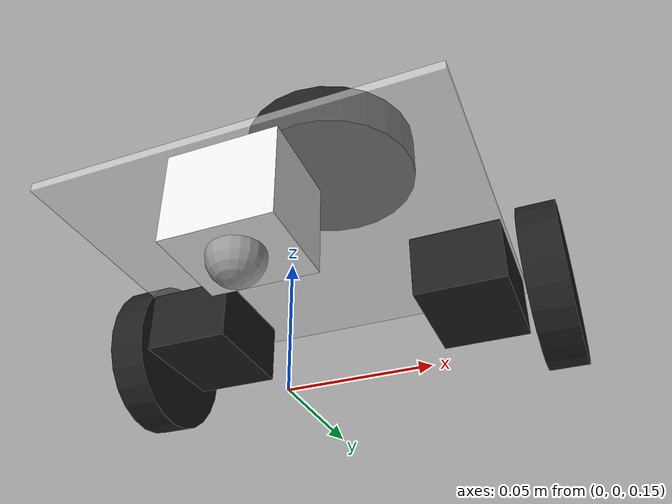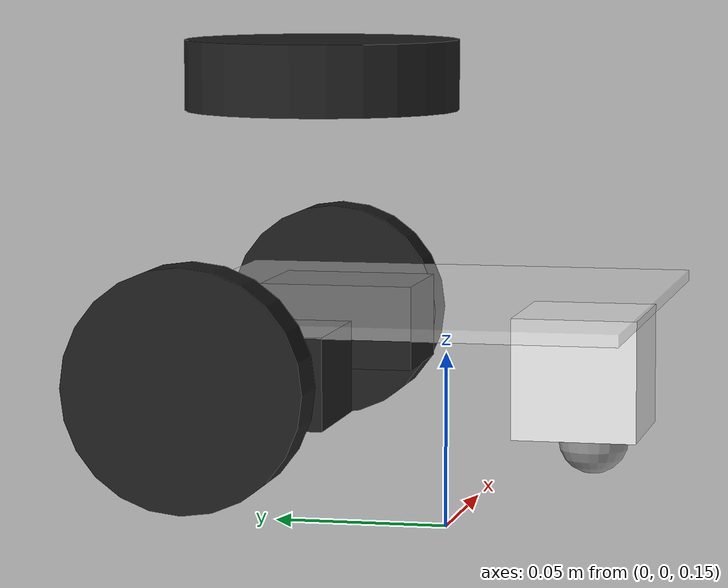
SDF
<?xml version='1.0'?>
<sdf version='1.6'>
  <model name='KTbot_V8'>
    <link name='base'>
      <pose frame=''>0.000537 0.007761 0.214993 0 -0 0</pose>
      <inertial>
        <mass>0.41</mass>
        <inertia>
          <ixx>0.00062306</ixx>
          <ixy>0</ixy>
          <ixz>0</ixz>
          <iyy>0.00076912</iyy>
          <iyz>0</iyz>
          <izz>0.00139144</izz>
        </inertia>
        <pose frame=''>0 0 0 0 -0 0</pose>
      </inertial>
      <visual name='visual'>
        <pose frame=''>0 0 0 0 -0 0</pose>
        <geometry>
          <box>
            <size>0.15 0.135 0.0033</size>
          </box>
        </geometry>
        <material>
          <lighting>1</lighting>
          <script>
            <uri>file://media/materials/scripts/gazebo.material</uri>
            <name>Gazebo/White</name>
          </script>
          <ambient>1 1 1 1</ambient>
          <diffuse>0.2 0.2 0.2 1</diffuse>
          <specular>0.1 0.1 0.1 1</specular>
          <emissive>0 0 0 1</emissive>
        </material>
        <transparency>0.5</transparency>
      </visual>
      <collision name='collision'>
        <pose frame=''>0 0 0 0 -0 0</pose>
        <geometry>
          <box>
            <size>0.15 0.135 0.0033</size>
          </box>
        </geometry>
      </collision>

      <visual name='caster_visual'>
        <pose frame=''>0.0 -0.05 -0.038 0 -0 0</pose>
        <geometry>
          <sphere>
            <radius>0.01</radius>
          </sphere>
        </geometry>
        <material>
          <script>
            <uri>file://media/materials/scripts/gazebo.material</uri>
            <name>Gazebo/Grey</name>
          </script>
          <ambient>1 1 1 1</ambient>
          <diffuse>0.2 0.2 0.2 1</diffuse>
          <specular>0.8 0.8 0.8 1</specular>
          <emissive>0 0 0 1</emissive>
        </material>
      </visual>

      <collision name='caster_collision'>
        <pose frame=''>0.0 -0.05 -0.038 0 -0 0</pose>
        <geometry>
          <sphere>
            <radius>0.01</radius>
          </sphere>
        </geometry>
        <surface>
          <friction>
            <ode>
              <mu>0.0</mu>
              <mu2>0.0</mu2>
              <slip1>1.0</slip1>
              <slip2>1.0</slip2>
            </ode>
          </friction>
        </surface>
      </collision>
    </link>
    <link name='left_servo'>
      <pose frame=''>-0.056463 0.041761 0.20111 0 0 -3.14159</pose>
      <inertial>
        <mass>0.052</mass>
        <inertia>
          <ixx>1.188e-05</ixx>
          <ixy>0</ixy>
          <ixz>0</ixz>
          <iyy>8.02e-06</iyy>
          <iyz>0</iyz>
          <izz>1.448e-05</izz>
        </inertia>
        <pose frame=''>0 0 0 0 -0 0</pose>
      </inertial>
      <visual name='visual'>
        <pose frame=''>0 0 0 0 -0 0</pose>
        <geometry>
          <box>
            <size>0.035 0.046 0.025</size>
          </box>
        </geometry>
        <material>
          <lighting>1</lighting>
          <script>
            <uri>file://media/materials/scripts/gazebo.material</uri>
            <name>Gazebo/Black</name>
          </script>
          <ambient>0 0 0 1</ambient>
          <diffuse>0.1 0.1 0.1 1</diffuse>
          <specular>0.01 0.01 0.01 1</specular>
          <emissive>0 0 0 1</emissive>
        </material>
      </visual>
      <collision name='collision'>
        <pose frame=''>0 0 0 0 -0 0</pose>
        <geometry>
          <box>
            <size>0.035 0.046 0.025</size>
          </box>
        </geometry>
      </collision>
    </link>
    <link name='right_servo'>
      <pose frame=''>0.057537 0.041761 0.20111 0 -0 0</pose>
      <inertial>
        <mass>0.052</mass>
        <inertia>
          <ixx>1.188e-05</ixx>
          <ixy>0</ixy>
          <ixz>0</ixz>
          <iyy>8.02e-06</iyy>
          <iyz>0</iyz>
          <izz>1.448e-05</izz>
        </inertia>
        <pose frame=''>0 0 0 0 -0 0</pose>
      </inertial>
      <visual name='visual'>
        <pose frame=''>0 0 0 0 -0 0</pose>
        <geometry>
          <box>
            <size>0.035 0.046 0.025</size>
          </box>
        </geometry>
        <material>
          <script>
            <uri>file://media/materials/scripts/gazebo.material</uri>
            <name>Gazebo/Black</name>
          </script>
          <ambient>0 0 0 1</ambient>
          <diffuse>0.1 0.1 0.1 1</diffuse>
          <specular>0.01 0.01 0.01 1</specular>
          <emissive>0 0 0 1</emissive>
        </material>
      </visual>
      <collision name='collision'>
        <pose frame=''>0 0 0 0 -0 0</pose>
        <geometry>
          <box>
            <size>0.035 0.046 0.025</size>
          </box>
        </geometry>
      </collision>
    </link>
    <link name='left_wheel'>
      <pose frame=''>-0.086463 0.051761 0.20111 0 1.57079 0</pose>
      <inertial>
        <mass>0.03</mass>
        <inertia>
          <ixx>8.48e-06</ixx>
          <ixy>0</ixy>
          <ixz>0</ixz>
          <iyy>8.48e-06</iyy>
          <iyz>0</iyz>
          <izz>1.584e-05</izz>
        </inertia>
        <pose frame=''>0 0 0 0 -0 0</pose>
      </inertial>
      <visual name='visual'>
        <pose frame=''>0 0 0 0 -0 0</pose>
        <geometry>
          <cylinder>
            <radius>0.0325</radius>
            <length>0.015</length>
          </cylinder>
        </geometry>
        <material>
          <script>
            <uri>file://media/materials/scripts/gazebo.material</uri>
            <name>Gazebo/Black</name>
          </script>
          <ambient>0 0 0 1</ambient>
          <diffuse>0.1 0.1 0.1 1</diffuse>
          <specular>0 0 0 1</specular>
          <emissive>0 0 0 1</emissive>
        </material>
      </visual>
      <collision name='collision'>
        <pose frame=''>0 0 0 0 -0 0</pose>
        <geometry>
          <cylinder>
            <radius>0.0325</radius>
            <length>0.015</length>
          </cylinder>
        </geometry>
        <surface>
          <friction>
            <ode>
              <mu>100</mu>
              <mu2>50</mu2>
              <slip1>0.0</slip1>
              <slip2>0.0</slip2>
            </ode>
          </friction>
        </surface>
      </collision>
    </link>
    <link name='right_wheel'>
      <pose frame=''>0.087537 0.051761 0.20111 0 1.57079 0</pose>
      <inertial>
        <mass>0.03</mass>
        <inertia>
          <ixx>8.48e-06</ixx>
          <ixy>0</ixy>
          <ixz>0</ixz>
          <iyy>8.48e-06</iyy>
          <iyz>0</iyz>
          <izz>1.584e-05</izz>
        </inertia>
        <pose frame=''>0 0 0 0 -0 0</pose>
      </inertial>
      <visual name='visual'>
        <pose frame=''>0 0 0 0 -0 0</pose>
        <geometry>
          <cylinder>
            <radius>0.0325</radius>
            <length>0.015</length>
          </cylinder>
        </geometry>
        <material>
          <script>
            <uri>file://media/materials/scripts/gazebo.material</uri>
            <name>Gazebo/Black</name>
          </script>
          <ambient>0 0 0 1</ambient>
          <diffuse>0.1 0.1 0.1 1</diffuse>
          <specular>0 0 0 1</specular>
          <emissive>0 0 0 1</emissive>
        </material>
      </visual>
      <collision name='collision'>
        <pose frame=''>0 0 0 0 -0 0</pose>
        <geometry>
          <cylinder>
            <radius>0.0325</radius>
            <length>0.015</length>
          </cylinder>
        </geometry>
        <surface>
          <friction>
            <ode>
              <mu>100</mu>
              <mu2>50</mu2>
              <slip1>0.0</slip1>
              <slip2>0.0</slip2>
            </ode>
          </friction>
        </surface>
      </collision>
    </link>
    <link name='back_stack'>
      <pose frame=''>0.000271 -0.039485 0.195938 0 -0 0</pose>
      <inertial>
        <mass>0.01</mass>
        <inertia>
          <ixx>1.98e-06</ixx>
          <ixy>0</ixy>
          <ixz>0</ixz>
          <iyy>2.3e-06</iyy>
          <iyz>0</iyz>
          <izz>2.35e-06</izz>
        </inertia>
        <pose frame=''>0 0 0 0 -0 0</pose>
      </inertial>
      <visual name='visual'>
        <pose frame=''>0 0 0 0 -0 0</pose>
        <geometry>
          <box>
            <size>0.04 0.035 0.034</size>
          </box>
        </geometry>
        <material>
          <script>
            <uri>file://media/materials/scripts/gazebo.material</uri>
            <name>Gazebo/White</name>
          </script>
          <ambient>1 1 1 1</ambient>
          <diffuse>0.1 0.1 0.1 1</diffuse>
          <specular>0.1 0.1 0.1 1</specular>
          <emissive>0 0 0 1</emissive>
        </material>
      </visual>
      <collision name='collision'>
        <pose frame=''>0 0 0 0 -0 0</pose>
        <geometry>
          <box>
            <size>0.04 0.035 0.034</size>
          </box>
        </geometry>
      </collision>
    </link>
    <link name='lidar'>
      <pose frame=''>0.000271 0.036043 0.278549 0 -0 0</pose>
      <inertial>
        <mass>0.1</mass>
        <inertia>
          <ixx>4.136e-05</ixx>
          <ixy>0</ixy>
          <ixz>0</ixz>
          <iyy>4.136e-05</iyy>
          <iyz>0</iyz>
          <izz>7.605e-05</izz>
        </inertia>
        <pose frame=''>0 0 0 0 -0 0</pose>
      </inertial>
      <visual name='visual'>
        <pose frame=''>0 0 0 0 -0 0</pose>
        <geometry>
          <cylinder>
            <radius>0.039</radius>
            <length>0.02</length>
          </cylinder>
        </geometry>
        <material>
          <script>
            <uri>file://media/materials/scripts/gazebo.material</uri>
            <name>Gazebo/Black</name>
          </script>
          <ambient>0 0 0 1</ambient>
          <diffuse>0.1 0.1 0.1 1</diffuse>
          <specular>0.01 0.01 0.01 1</specular>
          <emissive>0 0 0 1</emissive>
        </material>
      </visual>
      <collision name='collision'>
        <pose frame=''>0 0 0 0 -0 0</pose>
        <geometry>
          <cylinder>
            <radius>0.039</radius>
            <length>0.02</length>
          </cylinder>
        </geometry>
      </collision>
    </link>
    <joint name='back_stack_f' type='fixed'>
      <parent>base</parent>
      <child>back_stack</child>
      <pose frame=''>0 0 0 0 -0 0</pose>
    </joint>
    <joint name='servo_l_fix' type='fixed'>
      <parent>base</parent>
      <child>left_servo</child>
      <pose frame=''>0 0 0 0 -0 0</pose>
    </joint>
    <joint name='servo_r_fix' type='fixed'>
      <parent>base</parent>
      <child>right_servo</child>
      <pose frame=''>0 0 0 0 -0 0</pose>
    </joint>
    <static>0</static>
    <joint name='left_wheel_rev' type='revolute'>
      <parent>base</parent>
      <child>left_wheel</child>
      <pose frame=''>0 0 0 0 -0 0</pose>
      <axis>
        <xyz>0 0 -1</xyz>
        <limit>
          <lower>-1.79769e+308</lower>
          <upper>1.79769e+308</upper>
          <effort>0.1</effort>
        </limit>
        <dynamics>
          <spring_reference>0</spring_reference>
          <spring_stiffness>0</spring_stiffness>
          <damping>0.001</damping>
          <friction>0.01</friction>
        </dynamics>
      </axis>
    </joint>
    <joint name='lidar_rev' type='revolute'>
      <parent>base</parent>
      <child>lidar</child>
      <pose frame=''>0 0 0 0 -0 0</pose>
      <axis>
        <xyz>0 0 1</xyz>
        <limit>
          <lower>-1.79769e+308</lower>
          <upper>1.79769e+308</upper>
          <effort>0.1</effort>
        </limit>
      </axis>
    </joint>
    <joint name='right_wheel_rev' type='revolute'>
      <parent>base</parent>
      <child>right_wheel</child>
      <pose frame=''>0 0 0 0 -0 0</pose>
      <axis>
        <xyz>0 0 -1</xyz>
        <limit>
          <lower>-1.79769e+308</lower>
          <upper>1.79769e+308</upper>
          <effort>0.1</effort>
        </limit>
        <dynamics>
          <spring_reference>0</spring_reference>
          <spring_stiffness>0</spring_stiffness>
          <damping>0.001</damping>
          <friction>0.01</friction>
        </dynamics>
      </axis>
    </joint>
  </model>
</sdf>
